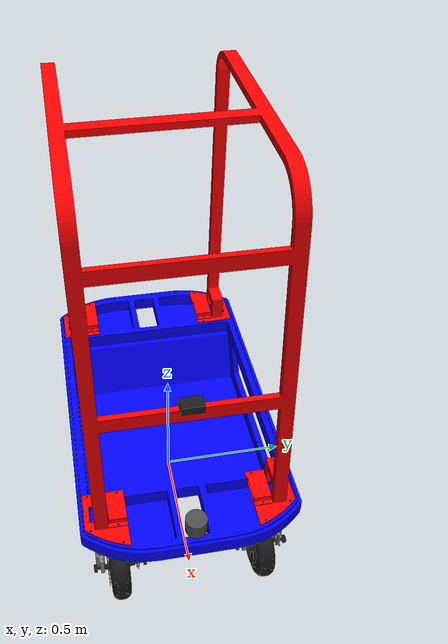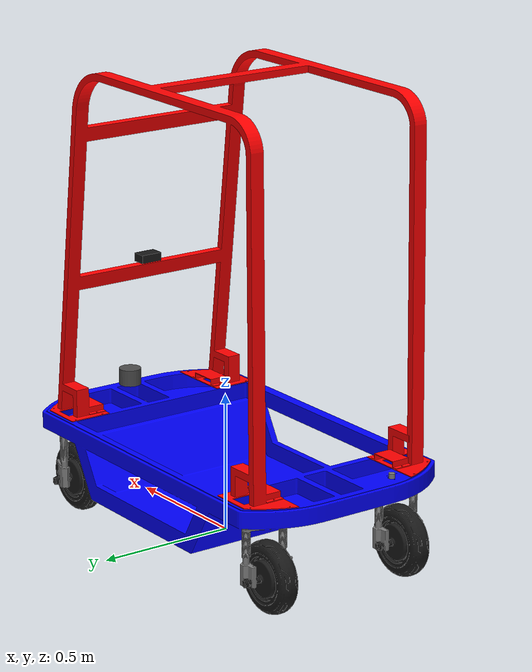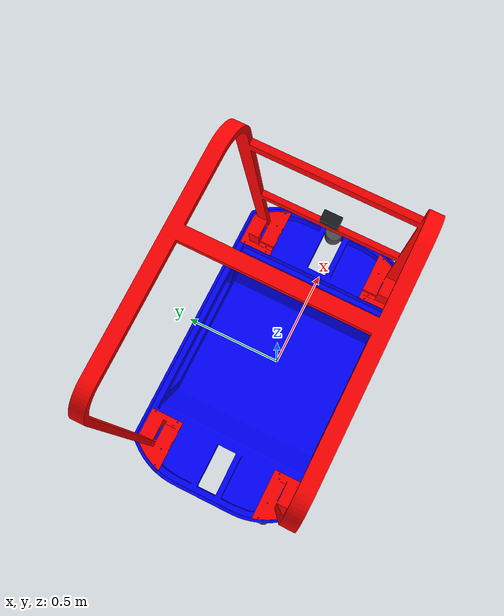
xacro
<?xml version="1.0"?>
<robot name="tadeo_ecar" xmlns:xacro="http://www.ros.org/wiki/xacro">

  <!-- AGREGAR: parámetro para package path -->

  <!-- Incluir archivos de componentes -->
  <xacro:include filename="$(find tadeo_ecar_description)/urdf/materials.xacro"/>
  <xacro:include filename="$(find tadeo_ecar_description)/urdf/tadeo_ecar_base.xacro"/>
  <xacro:include filename="$(find tadeo_ecar_description)/urdf/tadeo_ecar_wheels.xacro"/>
  <xacro:include filename="$(find tadeo_ecar_description)/urdf/gazebo_ignition.xacro"/>

  <!-- Parámetros principales del vehículo -->
  <xacro:property name="chassis_length" value="1.2"/>
  <xacro:property name="chassis_width" value="0.8"/>
  <xacro:property name="chassis_height" value="0.4"/>
  <xacro:property name="chassis_z_offset" value="0.155"/>

  <!-- Parámetros de ruedas -->
  <xacro:property name="wheel_radius" value="0.1"/>
  <xacro:property name="wheel_width" value="0.05"/>

  <!-- Parámetros de suspensión -->
  <xacro:property name="suspension_z_offset" value="0.227"/>
  <xacro:property name="wheel_x_offset_front" value="0.05"/>
  <xacro:property name="wheel_x_offset_rear" value="-0.05"/>

  <!-- Dimensiones del vehículo -->
  <xacro:property name="wheelbase" value="1.058"/>
  <xacro:property name="track_width" value="0.55"/>

  <!-- Posiciones calculadas de las ruedas -->
  <xacro:property name="front_wheel_x" value="0.478"/>
  <xacro:property name="rear_wheel_x" value="-0.58"/>
  <xacro:property name="left_wheel_y" value="0.275"/>
  <xacro:property name="right_wheel_y" value="-0.275"/>

  <!-- Parámetros de sensores -->
  <xacro:property name="camera_length" value="0.05"/>
  <xacro:property name="camera_width" value="0.08"/>
  <xacro:property name="camera_height" value="0.03"/>
  <xacro:property name="camera_z_offset" value="0.08"/>

  <xacro:property name="lidar_radius" value="0.04"/>
  <xacro:property name="lidar_height" value="0.06"/>

  <!-- Link base (referencia del suelo) -->
  <link name="base_footprint"/>

  <!-- Incluir componente del chasis con sensores -->
  <xacro:tadeo_ecar_base/>

  <!-- Ruedas delanteras -->
  <xacro:tadeo_ecar_wheel
    prefix="front_left"
    x_position="${front_wheel_x}"
    y_position="${left_wheel_y}"
    wheel_x_offset="${wheel_x_offset_front}"
    suspension_rotation="${pi}"/>

  <xacro:tadeo_ecar_wheel
    prefix="front_right"
    x_position="${front_wheel_x}"
    y_position="${right_wheel_y}"
    wheel_x_offset="${wheel_x_offset_front}"
    suspension_rotation="${-pi}"/>

  <!-- Ruedas traseras -->
  <xacro:tadeo_ecar_wheel
    prefix="rear_left"
    x_position="${rear_wheel_x}"
    y_position="${left_wheel_y}"
    wheel_x_offset="${wheel_x_offset_rear}"
    suspension_rotation="0.0"/>

  <xacro:tadeo_ecar_wheel
    prefix="rear_right"
    x_position="${rear_wheel_x}"
    y_position="${right_wheel_y}"
    wheel_x_offset="${wheel_x_offset_rear}"
    suspension_rotation="0.0"/>

  <!-- Incluir plugins de Gazebo -->
  <xacro:tadeo_ecar_gazebo_ignition/>

</robot>

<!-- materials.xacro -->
<robot xmlns:xacro="http://www.ros.org/wiki/xacro">

  <!-- Material azul para el chasis base -->
  <material name="blue">
    <color rgba="0.0 0.0 1.0 1.0"/>
  </material>

  <!-- Material rojo para el chasis superior -->
  <material name="red">
    <color rgba="1.0 0.0 0.0 1.0"/>
  </material>

  <!-- Material gris para suspensión -->
  <material name="gray">
    <color rgba="0.5 0.5 0.5 1.0"/>
  </material>

  <!-- Material negro para ruedas y cámara -->
  <material name="black">
    <color rgba="0.1 0.1 0.1 1.0"/>
  </material>

  <!-- Material gris oscuro para LiDAR -->
  <material name="dark_gray">
    <color rgba="0.3 0.3 0.3 1.0"/>
  </material>

</robot>

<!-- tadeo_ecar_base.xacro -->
<robot xmlns:xacro="http://www.ros.org/wiki/xacro">

  <xacro:macro name="tadeo_ecar_base">

    <!-- Joint que conecta base_footprint con el chasis principal -->
    <joint name="base_joint" type="fixed">
      <parent link="base_footprint"/>
      <child link="base_link"/>
      <origin xyz="0 0 ${wheel_radius}" rpy="0 0 0"/>
    </joint>

    <!-- Link del chasis principal -->
    <link name="base_link">
      <visual>
        <origin xyz="0 0 ${chassis_z_offset}" rpy="0 0 0"/>
        <geometry>
          <!-- CORREGIDO: usar file:// con path absoluto -->
          <mesh filename="package://tadeo_ecar_description/meshes/chassis/chasis_base.stl" scale="1 1 1"/>
        </geometry>
        <material name="blue"/>
      </visual>

      <collision>
        <origin xyz="0 0 ${chassis_z_offset}" rpy="0 0 0"/>
        <geometry>
          <mesh filename="package://tadeo_ecar_description/meshes/chassis/chasis_base.stl" scale="1 1 1"/>
        </geometry>
      </collision>

      <inertial>
        <origin xyz="0 0 ${chassis_z_offset}" rpy="0 0 0"/>
        <mass value="50.0"/>
        <inertia ixx="4.0" ixy="0.0" ixz="0.0"
                 iyy="4.0" iyz="0.0"
                 izz="2.0"/>
      </inertial>
    </link>

    <!-- Joint que conecta base_link con chasis2 -->
    <joint name="chasis_joint" type="fixed">
      <parent link="base_link"/>
      <child link="chasis_link"/>
      <origin xyz="0 0 ${chassis_height + 0.05}" rpy="0 0 0"/>
    </joint>

    <!-- Link del chasis superior (chasis2) -->
    <link name="chasis_link">
      <visual>
        <origin xyz="-0.49 0.39 ${-chassis_z_offset-0.029}" rpy="${pi/2} 0 ${pi}"/>
        <geometry>
          <!-- CORREGIDO: usar file:// con path absoluto -->
          <mesh filename="package://tadeo_ecar_description/meshes/chassis/chasis.stl" scale="0.001 0.001 0.001"/>
        </geometry>
        <material name="red"/>
      </visual>

      <collision>
        <origin xyz="-0.49 0.39 ${-chassis_z_offset-0.029}" rpy="${pi/2} 0 ${pi}"/>
        <geometry>
          <mesh filename="package://tadeo_ecar_description/meshes/chassis/chasis.stl" scale="0.001 0.001 0.001"/>
        </geometry>
      </collision>

      <inertial>
        <origin xyz="0 0 0" rpy="0 0 0"/>
        <mass value="20.0"/>
        <inertia ixx="1.0" ixy="0.0" ixz="0.0"
                 iyy="1.0" iyz="0.0"
                 izz="0.5"/>
      </inertial>
    </link>

    <!-- ========== SENSORES ========== -->

    <!-- Joint para cámara -->
    <joint name="camera_joint" type="fixed">
      <parent link="base_link"/>
      <child link="camera_link"/>
      <origin xyz="0.476 0 ${chassis_height + chassis_z_offset + camera_z_offset + 0.15}" rpy="0 0 0"/>
    </joint>

    <!-- Link de cámara -->
    <link name="camera_link">
      <visual>
        <origin xyz="0 0 0" rpy="0 0 0"/>
        <geometry>
          <box size="${camera_length} ${camera_width} ${camera_height}"/>
        </geometry>
        <material name="black"/>
      </visual>

      <collision>
        <origin xyz="0 0 0" rpy="0 0 0"/>
        <geometry>
          <box size="${camera_length} ${camera_width} ${camera_height}"/>
        </geometry>
      </collision>

      <inertial>
        <origin xyz="0 0 0" rpy="0 0 0"/>
        <mass value="0.1"/>
        <inertia ixx="0.001" ixy="0.0" ixz="0.0"
                 iyy="0.001" iyz="0.0"
                 izz="0.001"/>
      </inertial>
    </link>

    <!-- Joint para LiDAR -->
    <joint name="lidar_joint" type="fixed">
      <parent link="base_link"/>
      <child link="lidar_link"/>
      <origin xyz="0.6 0 ${chassis_height - chassis_z_offset + lidar_height}" rpy="0 0 0"/>
    </joint>

    <!-- Link de LiDAR -->
    <link name="lidar_link">
      <visual>
        <origin xyz="0 0 0" rpy="0 0 0"/>
        <geometry>
          <cylinder radius="${lidar_radius}" length="${lidar_height}"/>
        </geometry>
        <material name="dark_gray"/>
      </visual>

      <collision>
        <origin xyz="0 0 0" rpy="0 0 0"/>
        <geometry>
          <cylinder radius="${lidar_radius}" length="${lidar_height}"/>
        </geometry>
      </collision>

      <inertial>
        <origin xyz="0 0 0" rpy="0 0 0"/>
        <mass value="0.2"/>
        <inertia ixx="0.001" ixy="0.0" ixz="0.0"
                 iyy="0.001" iyz="0.0"
                 izz="0.001"/>
      </inertial>
    </link>

  </xacro:macro>

</robot>

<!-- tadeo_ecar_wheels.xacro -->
<robot xmlns:xacro="http://www.ros.org/wiki/xacro">

  <xacro:macro name="tadeo_ecar_wheel" params="prefix x_position y_position wheel_x_offset suspension_rotation">

    <!-- Joint de suspensión (dirección) -->
    <joint name="${prefix}_suspension_joint" type="revolute">
      <parent link="base_link"/>
      <child link="${prefix}_suspension_link"/>
      <origin xyz="${x_position} ${y_position} 0" rpy="0 0 0"/>
      <axis xyz="0 0 1"/>
      <limit lower="-0.5" upper="0.5" effort="100" velocity="1.0"/>
    </joint>

    <!-- Link de suspensión -->
    <link name="${prefix}_suspension_link">
      <visual>
        <origin xyz="0 0 ${suspension_z_offset}" rpy="0 ${pi} ${suspension_rotation}"/>
        <geometry>
          <!-- CORREGIDO: usar file:// con path absoluto -->
          <mesh filename="package://tadeo_ecar_description/meshes/suspension/suspension.stl" scale="1 1 1"/>
        </geometry>
        <material name="gray"/>
      </visual>

      <collision>
        <origin xyz="0 0 ${suspension_z_offset}" rpy="0 ${pi} ${suspension_rotation}"/>
        <geometry>
         <mesh filename="package://tadeo_ecar_description/meshes/suspension/suspension.stl" scale="1 1 1"/>
        </geometry>
      </collision>

      <inertial>
        <origin xyz="0 0 ${suspension_z_offset}" rpy="0 ${pi} ${suspension_rotation}"/>
        <mass value="2.0"/>
        <inertia ixx="0.01" ixy="0.0" ixz="0.0"
                 iyy="0.01" iyz="0.0"
                 izz="0.01"/>
      </inertial>
    </link>

    <!-- Joint de rueda (rotación) -->
    <joint name="${prefix}_wheel_joint" type="continuous">
      <parent link="${prefix}_suspension_link"/>
      <child link="${prefix}_wheel_link"/>
      <origin xyz="${wheel_x_offset} 0 0" rpy="0 0 0"/>
      <axis xyz="0 1 0"/>
    </joint>

    <!-- Link de rueda -->
    <link name="${prefix}_wheel_link">
      <visual>
        <origin xyz="0 0 0" rpy="${pi/2} 0 0"/>
        <geometry>
          <!-- CORREGIDO: usar file:// con path absoluto -->
          <mesh filename="package://tadeo_ecar_description/meshes/wheels/wheel.stl" scale="1 1 1"/>
        </geometry>
        <material name="black"/>
      </visual>

      <collision>
        <origin xyz="0 0 0" rpy="${pi/2} 0 0"/>
        <geometry>
          <mesh filename="package://tadeo_ecar_description/meshes/wheels/wheel.stl" scale="1 1 1"/>
        </geometry>
      </collision>

      <inertial>
        <origin xyz="0 0 0" rpy="0 0 0"/>
        <mass value="3.0"/>
        <inertia ixx="0.1" ixy="0.0" ixz="0.0"
                 iyy="0.1" iyz="0.0"
                 izz="0.1"/>
      </inertial>
    </link>

  </xacro:macro>

</robot>
